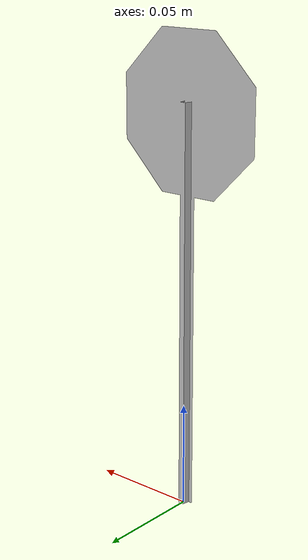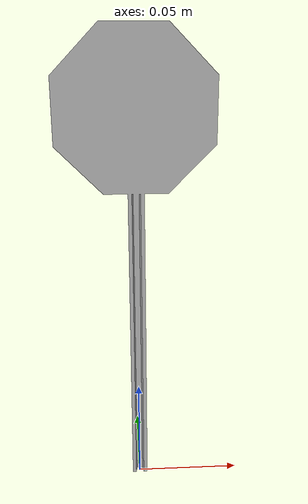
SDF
<?xml version="1.0" ?>
<sdf version="1.5">
  <model name="Stop">
    <static>true</static>
    <link name="link">
      <collision name="collision">
        <geometry>
          <mesh>
            <uri>model://stop_sign/meshes/stop_sign_2.dae</uri>
            <scale>0.16 0.16 0.16</scale>
          </mesh>
        </geometry>
      </collision>
      <visual name="visual">
        <geometry>
          <mesh>
            <uri>file://stop_sign/meshes/stop_sign_2.dae</uri>
            <scale>0.16 0.16 0.16</scale>
          </mesh>
        </geometry>
      </visual>
    </link>
  </model>
</sdf>
